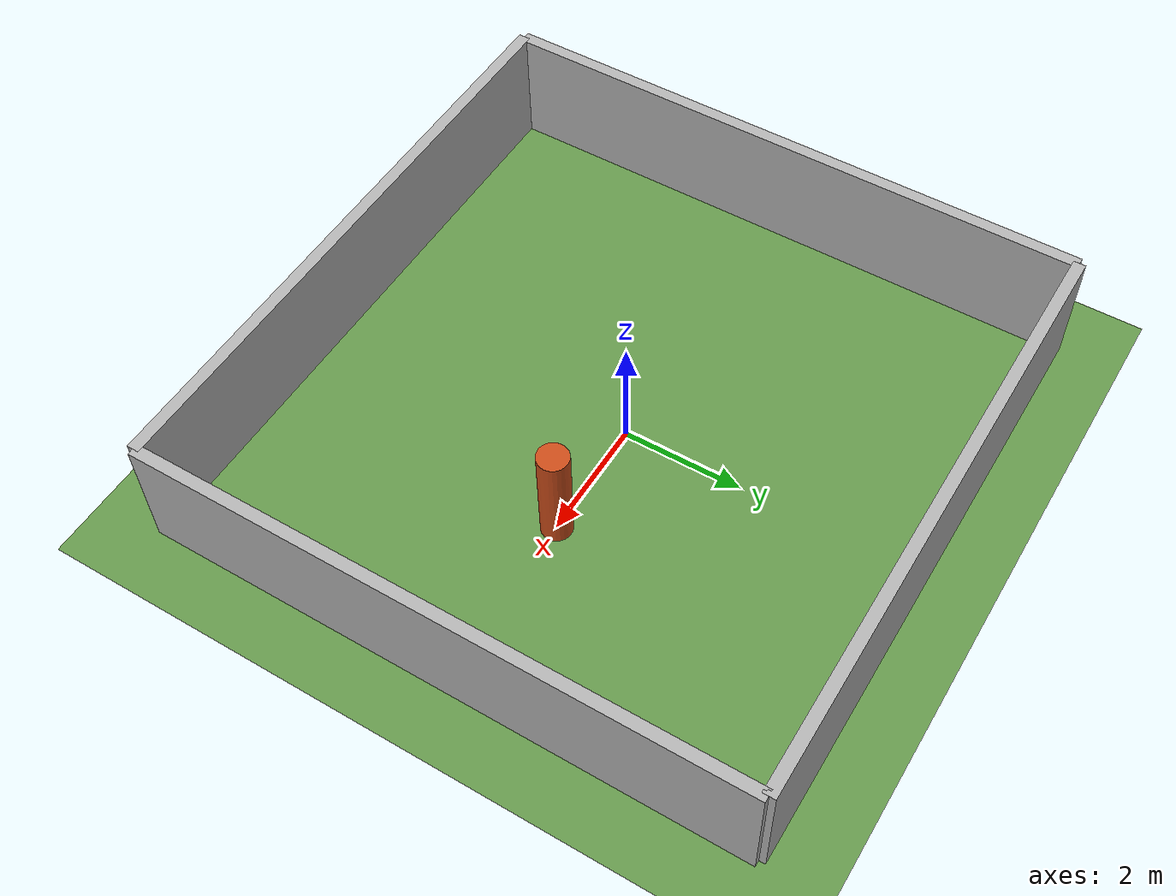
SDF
<?xml version="1.0"?>
<sdf version="1.9">
  <world name="follower_world">
    <!-- 200 Hz matches the IMU and exceeds the 10 Hz controller while
         avoiding the unnecessary CPU cost of Gazebo's 1 kHz default step. -->
    <physics name="trolley_physics" type="dart">
      <max_step_size>0.005</max_step_size>
      <real_time_factor>1.0</real_time_factor>
    </physics>
    <plugin filename="gz-sim-physics-system" name="gz::sim::systems::Physics"/>
    <plugin filename="gz-sim-sensors-system" name="gz::sim::systems::Sensors">
      <render_engine>ogre2</render_engine>
    </plugin>
    <plugin filename="gz-sim-imu-system" name="gz::sim::systems::Imu"/>
    <plugin filename="gz-sim-scene-broadcaster-system" name="gz::sim::systems::SceneBroadcaster"/>
    <plugin filename="gz-sim-user-commands-system" name="gz::sim::systems::UserCommands"/>

    <light type="directional" name="sun">
      <cast_shadows>false</cast_shadows>
      <direction>-0.5 0.1 -0.9</direction>
      <diffuse>0.8 0.8 0.8 1</diffuse>
      <specular>0.2 0.2 0.2 1</specular>
    </light>

    <!-- Ground -->
    <model name="ground_plane">
      <static>true</static>
      <link name="link">
        <collision name="col"><geometry><plane><normal>0 0 1</normal><size>20 20</size></plane></geometry></collision>
        <visual name="vis">
          <geometry><plane><normal>0 0 1</normal><size>20 20</size></plane></geometry>
          <material><ambient>0.4 0.6 0.3 1</ambient><diffuse>0.4 0.6 0.3 1</diffuse></material>
        </visual>
      </link>
    </model>

    <!-- Room walls -->
    <model name="wall_north"><static>true</static><pose>5 0 1 0 0 0</pose>
      <link name="l"><collision name="c"><geometry><box><size>0.2 10 2</size></box></geometry></collision>
        <visual name="v"><geometry><box><size>0.2 10 2</size></box></geometry>
          <material><ambient>0.7 0.7 0.7 1</ambient></material></visual></link></model>
    <model name="wall_south"><static>true</static><pose>-5 0 1 0 0 0</pose>
      <link name="l"><collision name="c"><geometry><box><size>0.2 10 2</size></box></geometry></collision>
        <visual name="v"><geometry><box><size>0.2 10 2</size></box></geometry>
          <material><ambient>0.7 0.7 0.7 1</ambient></material></visual></link></model>
    <model name="wall_east"><static>true</static><pose>0 5 1 0 0 0</pose>
      <link name="l"><collision name="c"><geometry><box><size>10 0.2 2</size></box></geometry></collision>
        <visual name="v"><geometry><box><size>10 0.2 2</size></box></geometry>
          <material><ambient>0.7 0.7 0.7 1</ambient></material></visual></link></model>
    <model name="wall_west"><static>true</static><pose>0 -5 1 0 0 0</pose>
      <link name="l"><collision name="c"><geometry><box><size>10 0.2 2</size></box></geometry></collision>
        <visual name="v"><geometry><box><size>10 0.2 2</size></box></geometry>
          <material><ambient>0.7 0.7 0.7 1</ambient></material></visual></link></model>

    <!-- Target person (cylinder) - el objeto a seguir -->
    <model name="person">
      <pose>2 0 0.9 0 0 0</pose>
      <link name="body">
        <collision name="c"><geometry><cylinder><radius>0.25</radius><length>1.8</length></cylinder></geometry></collision>
        <visual name="v">
          <geometry><cylinder><radius>0.25</radius><length>1.8</length></cylinder></geometry>
          <material><ambient>0.8 0.3 0.1 1</ambient><diffuse>0.8 0.3 0.1 1</diffuse></material>
        </visual>
        <inertial>
          <mass>70</mass>
          <inertia>
            <ixx>10</ixx><ixy>0</ixy><ixz>0</ixz>
            <iyy>10</iyy><iyz>0</iyz><izz>1</izz>
          </inertia>
        </inertial>
      </link>
    </model>

  </world>
</sdf>
